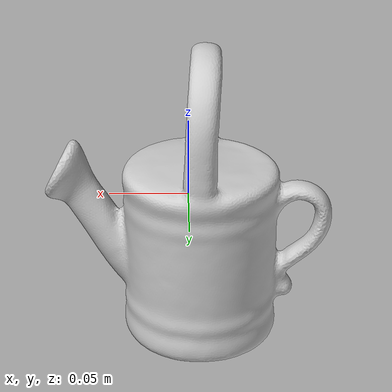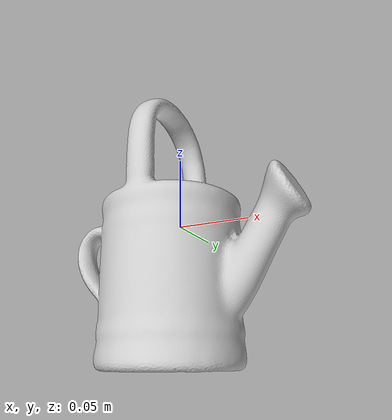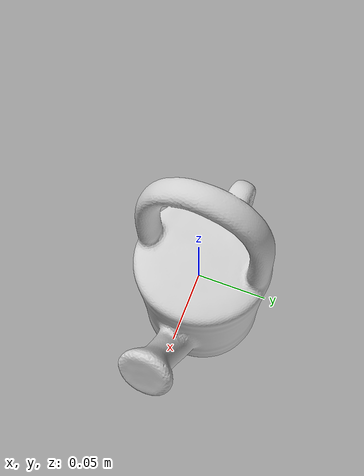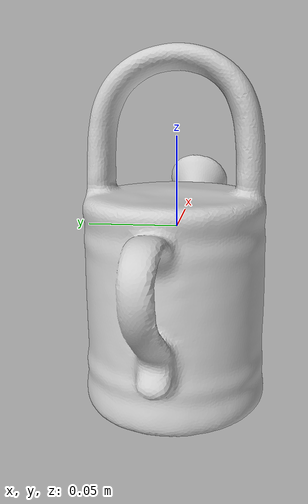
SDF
<?xml version="1.0" ?>
<sdf version="1.5">
  <model name="can">
	<static>false</static>
    <pose>0 0 0 0 0 0</pose>
    <link name="link">
      <inertial>
        <mass>0.1</mass>
      </inertial>
      <collision name="collision">
        <geometry>
          <mesh>
            <uri>model://Can/meshes/can.dae</uri>
            <scale>1 1 1</scale>
          </mesh>
        </geometry>
      </collision>
      <visual name="visual">
        <geometry>
          <mesh>
            <uri>model://Can/meshes/can.dae</uri>
          </mesh>
        </geometry>
      </visual>
    </link>
  </model>
</sdf>
